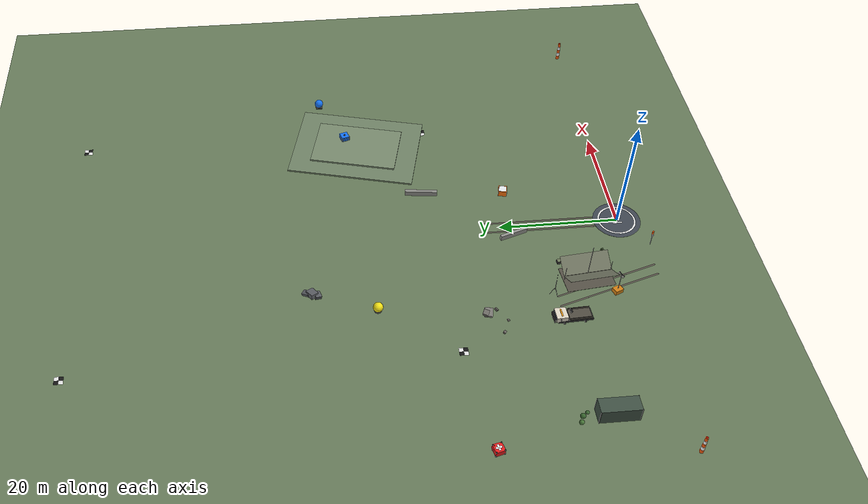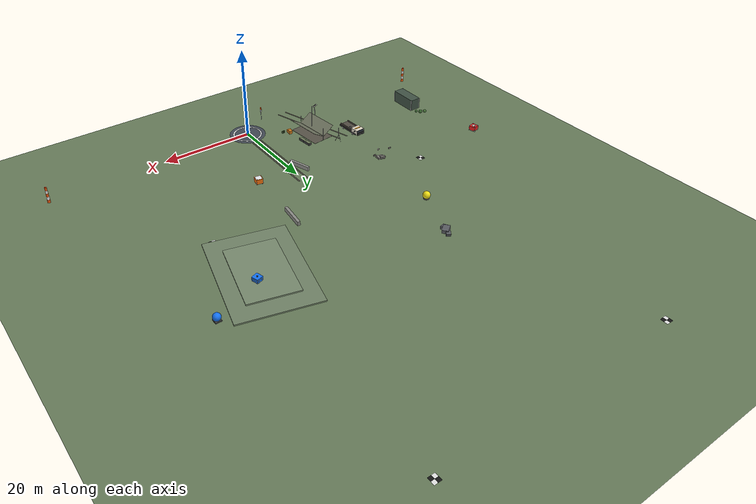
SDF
<sdf version="1.9">
 <world name="box_survey">
  <model name="global_terrain">
   <static>true</static>
   <link name="link">
    <collision name="collision">
     <geometry><plane><normal>0 0 1</normal><size>1000 1000</size></plane></geometry>
    </collision>
    <visual name="visual">
     <geometry><plane><normal>0 0 1</normal><size>1000 1000</size></plane></geometry>
     <material>
      <ambient>0.36 0.44 0.32 1</ambient>
      <diffuse>0.40 0.48 0.35 1</diffuse>
      <specular>0.04 0.04 0.04 1</specular>
     </material>
    </visual>
   </link>
   <pose>0 0 -0.01 0 0 0</pose>
  </model>
  <model name="gcp_markers">
   <static>true</static>
   <pose>0 0 0.004 0 0 0</pose>
   <link name="link">
    <visual name="gcp_1_base">
     <pose>-25.0 30.0 0 0 0 0</pose>
     <geometry><box><size>1.4 1.4 0.001</size></box></geometry>
     <material><ambient>0.9 0.9 0.9 1</ambient><diffuse>0.9 0.9 0.9 1</diffuse></material>
    </visual>
    <visual name="gcp_1_c1">
     <pose>-25.35 30.35 0.001 0 0 0</pose>
     <geometry><box><size>0.7 0.7 0.001</size></box></geometry>
     <material><ambient>0.08 0.08 0.08 1</ambient><diffuse>0.08 0.08 0.08 1</diffuse></material>
    </visual>
    <visual name="gcp_1_c2">
     <pose>-24.65 29.65 0.001 0 0 0</pose>
     <geometry><box><size>0.7 0.7 0.001</size></box></geometry>
     <material><ambient>0.08 0.08 0.08 1</ambient><diffuse>0.08 0.08 0.08 1</diffuse></material>
    </visual>
    <visual name="gcp_2_base">
     <pose>25.0 30.0 0 0 0 0</pose>
     <geometry><box><size>1.4 1.4 0.001</size></box></geometry>
     <material><ambient>0.9 0.9 0.9 1</ambient><diffuse>0.9 0.9 0.9 1</diffuse></material>
    </visual>
    <visual name="gcp_2_c1">
     <pose>24.65 30.35 0.001 0 0 0</pose>
     <geometry><box><size>0.7 0.7 0.001</size></box></geometry>
     <material><ambient>0.08 0.08 0.08 1</ambient><diffuse>0.08 0.08 0.08 1</diffuse></material>
    </visual>
    <visual name="gcp_2_c2">
     <pose>25.35 29.65 0.001 0 0 0</pose>
     <geometry><box><size>0.7 0.7 0.001</size></box></geometry>
     <material><ambient>0.08 0.08 0.08 1</ambient><diffuse>0.08 0.08 0.08 1</diffuse></material>
    </visual>
    <visual name="gcp_3_base">
     <pose>-25.0 90.0 0 0 0 0</pose>
     <geometry><box><size>1.4 1.4 0.001</size></box></geometry>
     <material><ambient>0.9 0.9 0.9 1</ambient><diffuse>0.9 0.9 0.9 1</diffuse></material>
    </visual>
    <visual name="gcp_3_c1">
     <pose>-25.35 90.35 0.001 0 0 0</pose>
     <geometry><box><size>0.7 0.7 0.001</size></box></geometry>
     <material><ambient>0.08 0.08 0.08 1</ambient><diffuse>0.08 0.08 0.08 1</diffuse></material>
    </visual>
    <visual name="gcp_3_c2">
     <pose>-24.65 89.65 0.001 0 0 0</pose>
     <geometry><box><size>0.7 0.7 0.001</size></box></geometry>
     <material><ambient>0.08 0.08 0.08 1</ambient><diffuse>0.08 0.08 0.08 1</diffuse></material>
    </visual>
    <visual name="gcp_4_base">
     <pose>25.0 90.0 0 0 0 0</pose>
     <geometry><box><size>1.4 1.4 0.001</size></box></geometry>
     <material><ambient>0.9 0.9 0.9 1</ambient><diffuse>0.9 0.9 0.9 1</diffuse></material>
    </visual>
    <visual name="gcp_4_c1">
     <pose>24.65 90.35 0.001 0 0 0</pose>
     <geometry><box><size>0.7 0.7 0.001</size></box></geometry>
     <material><ambient>0.08 0.08 0.08 1</ambient><diffuse>0.08 0.08 0.08 1</diffuse></material>
    </visual>
    <visual name="gcp_4_c2">
     <pose>25.35 89.65 0.001 0 0 0</pose>
     <geometry><box><size>0.7 0.7 0.001</size></box></geometry>
     <material><ambient>0.08 0.08 0.08 1</ambient><diffuse>0.08 0.08 0.08 1</diffuse></material>
    </visual>
   </link>
  </model>
  <model name="survey_tower_se">
   <static>true</static>
   <pose>45.0 0.0 0 0 0 0</pose>
   <link name="link">
    <collision name="col">
     <geometry><cylinder><radius>0.35</radius><length>3.5</length></cylinder></geometry>
     <pose>0 0 1.75 0 0 0</pose>
    </collision>
    <visual name="b1">
     <pose>0 0 0.35 0 0 0</pose>
     <geometry><cylinder><radius>0.30</radius><length>0.7</length></cylinder></geometry>
     <material><ambient>0.95 0.35 0.05 1</ambient><diffuse>0.95 0.35 0.05 1</diffuse></material>
    </visual>
    <visual name="b2">
     <pose>0 0 1.05 0 0 0</pose>
     <geometry><cylinder><radius>0.28</radius><length>0.7</length></cylinder></geometry>
     <material><ambient>0.95 0.95 0.95 1</ambient><diffuse>0.95 0.95 0.95 1</diffuse></material>
    </visual>
    <visual name="b3">
     <pose>0 0 1.75 0 0 0</pose>
     <geometry><cylinder><radius>0.26</radius><length>0.7</length></cylinder></geometry>
     <material><ambient>0.95 0.35 0.05 1</ambient><diffuse>0.95 0.35 0.05 1</diffuse></material>
    </visual>
    <visual name="b4">
     <pose>0 0 2.45 0 0 0</pose>
     <geometry><cylinder><radius>0.24</radius><length>0.7</length></cylinder></geometry>
     <material><ambient>0.95 0.95 0.95 1</ambient><diffuse>0.95 0.95 0.95 1</diffuse></material>
    </visual>
    <visual name="b5">
     <pose>0 0 3.15 0 0 0</pose>
     <geometry><cylinder><radius>0.22</radius><length>0.7</length></cylinder></geometry>
     <material><ambient>0.95 0.35 0.05 1</ambient><diffuse>0.95 0.35 0.05 1</diffuse></material>
    </visual>
    <visual name="beacon">
     <pose>0 0 3.55 0 0 0</pose>
     <geometry><sphere><radius>0.12</radius></sphere></geometry>
     <material>
      <ambient>0.9 0.05 0.05 1</ambient>
      <diffuse>0.9 0.05 0.05 1</diffuse>
      <emissive>0.7 0.05 0.05 1</emissive>
     </material>
    </visual>
   </link>
  </model>
  <model name="survey_tower_sw">
   <static>true</static>
   <pose>-45.0 0.0 0 0 0 0</pose>
   <link name="link">
    <collision name="col">
     <geometry><cylinder><radius>0.35</radius><length>3.5</length></cylinder></geometry>
     <pose>0 0 1.75 0 0 0</pose>
    </collision>
    <visual name="b1">
     <pose>0 0 0.35 0 0 0</pose>
     <geometry><cylinder><radius>0.30</radius><length>0.7</length></cylinder></geometry>
     <material><ambient>0.95 0.35 0.05 1</ambient><diffuse>0.95 0.35 0.05 1</diffuse></material>
    </visual>
    <visual name="b2">
     <pose>0 0 1.05 0 0 0</pose>
     <geometry><cylinder><radius>0.28</radius><length>0.7</length></cylinder></geometry>
     <material><ambient>0.95 0.95 0.95 1</ambient><diffuse>0.95 0.95 0.95 1</diffuse></material>
    </visual>
    <visual name="b3">
     <pose>0 0 1.75 0 0 0</pose>
     <geometry><cylinder><radius>0.26</radius><length>0.7</length></cylinder></geometry>
     <material><ambient>0.95 0.35 0.05 1</ambient><diffuse>0.95 0.35 0.05 1</diffuse></material>
    </visual>
    <visual name="b4">
     <pose>0 0 2.45 0 0 0</pose>
     <geometry><cylinder><radius>0.24</radius><length>0.7</length></cylinder></geometry>
     <material><ambient>0.95 0.95 0.95 1</ambient><diffuse>0.95 0.95 0.95 1</diffuse></material>
    </visual>
    <visual name="b5">
     <pose>0 0 3.15 0 0 0</pose>
     <geometry><cylinder><radius>0.22</radius><length>0.7</length></cylinder></geometry>
     <material><ambient>0.95 0.35 0.05 1</ambient><diffuse>0.95 0.35 0.05 1</diffuse></material>
    </visual>
    <visual name="beacon">
     <pose>0 0 3.55 0 0 0</pose>
     <geometry><sphere><radius>0.12</radius></sphere></geometry>
     <material>
      <ambient>0.9 0.05 0.05 1</ambient>
      <diffuse>0.9 0.05 0.05 1</diffuse>
      <emissive>0.7 0.05 0.05 1</emissive>
     </material>
    </visual>
   </link>
  </model>
  <model name="helipad_complex">
   <static>true</static>
   <pose>0.0 0.0 0.003 0 0 0</pose>
   <link name="link">
    <visual name="pad_surface">
     <geometry><cylinder><radius>4.0</radius><length>0.005</length></cylinder></geometry>
     <material><ambient>0.22 0.24 0.28 1</ambient><diffuse>0.25 0.28 0.32 1</diffuse></material>
    </visual>
    <visual name="white_ring">
     <pose>0 0 0.003 0 0 0</pose>
     <geometry><cylinder><radius>3.2</radius><length>0.002</length></cylinder></geometry>
     <material><ambient>0.92 0.92 0.92 1</ambient><diffuse>0.92 0.92 0.92 1</diffuse></material>
    </visual>
    <visual name="inner_pad">
     <pose>0 0 0.004 0 0 0</pose>
     <geometry><cylinder><radius>2.9</radius><length>0.002</length></cylinder></geometry>
     <material><ambient>0.22 0.24 0.28 1</ambient><diffuse>0.25 0.28 0.32 1</diffuse></material>
    </visual>
    <visual name="h_bar_left">
     <pose>-0.6 0 0.005 0 0 0</pose>
     <geometry><box><size>0.28 1.6 0.002</size></box></geometry>
     <material><ambient>0.95 0.95 0.95 1</ambient><diffuse>0.95 0.95 0.95 1</diffuse></material>
    </visual>
    <visual name="h_bar_right">
     <pose>0.6 0 0.005 0 0 0</pose>
     <geometry><box><size>0.28 1.6 0.002</size></box></geometry>
     <material><ambient>0.95 0.95 0.95 1</ambient><diffuse>0.95 0.95 0.95 1</diffuse></material>
    </visual>
    <visual name="h_bar_cross">
     <pose>0 0 0.005 0 0 0</pose>
     <geometry><box><size>1.2 0.28 0.002</size></box></geometry>
     <material><ambient>0.95 0.95 0.95 1</ambient><diffuse>0.95 0.95 0.95 1</diffuse></material>
    </visual>
   </link>
  </model>
  <model name="weather_mast">
   <static>true</static>
   <pose>-6.0 -4.0 0 0 0 0</pose>
   <link name="link">
    <collision name="col">
     <geometry><cylinder><radius>0.08</radius><length>2.8</length></cylinder></geometry>
     <pose>0 0 1.4 0 0 0</pose>
    </collision>
    <visual name="pole">
     <pose>0 0 1.4 0 0 0</pose>
     <geometry><cylinder><radius>0.05</radius><length>2.8</length></cylinder></geometry>
     <material><ambient>0.75 0.78 0.82 1</ambient><diffuse>0.75 0.78 0.82 1</diffuse></material>
    </visual>
    <visual name="sensor_box">
     <pose>0 0 2.2 0 0 0</pose>
     <geometry><box><size>0.3 0.25 0.4</size></box></geometry>
     <material><ambient>0.85 0.85 0.85 1</ambient><diffuse>0.85 0.85 0.85 1</diffuse></material>
    </visual>
    <visual name="wind_sock">
     <pose>0 0 2.8 0 0 0</pose>
     <geometry><cylinder><radius>0.15</radius><length>0.6</length></cylinder></geometry>
     <material><ambient>0.95 0.35 0.05 1</ambient><diffuse>0.95 0.35 0.05 1</diffuse></material>
    </visual>
   </link>
  </model>
  <model name="natural_ridge_ce">
   <static>true</static>
   <pose>22.0 42.0 0 0 0 -0.25</pose>
   <link name="link">
    <collision name="col_r1">
     <pose>0 0 0.15 0 0 0</pose>
     <geometry><box><size>16.0 22.0 0.30</size></box></geometry>
    </collision>
    <visual name="vis_r1">
     <pose>0 0 0.15 0 0 0</pose>
     <geometry><box><size>16.0 22.0 0.30</size></box></geometry>
     <material><ambient>0.40 0.47 0.36 1</ambient><diffuse>0.44 0.51 0.40 1</diffuse></material>
    </visual>
    <collision name="col_r2">
     <pose>0 0 0.45 0 0 0</pose>
     <geometry><box><size>10.0 15.0 0.30</size></box></geometry>
    </collision>
    <visual name="vis_r2">
     <pose>0 0 0.45 0 0 0</pose>
     <geometry><box><size>10.0 15.0 0.30</size></box></geometry>
     <material><ambient>0.43 0.50 0.39 1</ambient><diffuse>0.47 0.54 0.43 1</diffuse></material>
    </visual>
   </link>
  </model>
  <model name="rock_outcrop_alpha">
   <static>true</static>
   <pose>-12.0 52.0 0 0 0 0.6</pose>
   <link name="link">
    <collision name="c1">
     <pose>0 0 0.4 0 0 0</pose>
     <geometry><box><size>1.6 1.3 0.8</size></box></geometry>
    </collision>
    <visual name="v1">
     <pose>0 0 0.4 0.1 0.15 0</pose>
     <geometry><box><size>1.6 1.3 0.8</size></box></geometry>
     <material><ambient>0.32 0.33 0.35 1</ambient><diffuse>0.36 0.37 0.39 1</diffuse></material>
    </visual>
    <visual name="v2">
     <pose>0.8 0.6 0.25 -0.1 0.2 0.4</pose>
     <geometry><box><size>1.1 0.9 0.5</size></box></geometry>
     <material><ambient>0.28 0.29 0.31 1</ambient><diffuse>0.32 0.33 0.35 1</diffuse></material>
    </visual>
    <visual name="v3">
     <pose>-0.7 -0.5 0.3 0.2 -0.1 -0.3</pose>
     <geometry><box><size>1.2 1.0 0.6</size></box></geometry>
     <material><ambient>0.30 0.31 0.33 1</ambient><diffuse>0.34 0.35 0.37 1</diffuse></material>
    </visual>
   </link>
  </model>
  <model name="jersey_barrier_2">
   <static>true</static>
   <pose>9.0 32.0 0 0 0 -0.12</pose>
   <link name="link">
    <collision name="col">
     <pose>0 0 0.45 0 0 0</pose>
     <geometry><box><size>0.6 5.5 0.9</size></box></geometry>
    </collision>
    <visual name="vis">
     <pose>0 0 0.45 0 0 0</pose>
     <geometry><box><size>0.6 5.5 0.9</size></box></geometry>
     <material><ambient>0.50 0.50 0.48 1</ambient><diffuse>0.54 0.54 0.52 1</diffuse></material>
    </visual>
   </link>
  </model>
  <model name="iso_container_west">
   <static>true</static>
   <pose>-38.0 10.0 0 0 0 0</pose>
   <link name="link">
    <collision name="col">
     <pose>0 0 1.3 0 0 0</pose>
     <geometry><box><size>2.44 6.06 2.60</size></box></geometry>
    </collision>
    <visual name="body">
     <pose>0 0 1.3 0 0 0</pose>
     <geometry><box><size>2.44 6.06 2.60</size></box></geometry>
     <material>
      <ambient>0.22 0.28 0.24 1</ambient>
      <diffuse>0.25 0.32 0.27 1</diffuse>
      <specular>0.1 0.1 0.1 1</specular>
     </material>
    </visual>
    <visual name="corner_post_1">
     <pose>-1.20 -3.00 1.3 0 0 0</pose>
     <geometry><box><size>0.12 0.12 2.60</size></box></geometry>
     <material><ambient>0.12 0.12 0.12 1</ambient><diffuse>0.12 0.12 0.12 1</diffuse></material>
    </visual>
    <visual name="corner_post_2">
     <pose>1.20 -3.00 1.3 0 0 0</pose>
     <geometry><box><size>0.12 0.12 2.60</size></box></geometry>
     <material><ambient>0.12 0.12 0.12 1</ambient><diffuse>0.12 0.12 0.12 1</diffuse></material>
    </visual>
    <visual name="corner_post_3">
     <pose>-1.20 3.00 1.3 0 0 0</pose>
     <geometry><box><size>0.12 0.12 2.60</size></box></geometry>
     <material><ambient>0.12 0.12 0.12 1</ambient><diffuse>0.12 0.12 0.12 1</diffuse></material>
    </visual>
    <visual name="corner_post_4">
     <pose>1.20 3.00 1.3 0 0 0</pose>
     <geometry><box><size>0.12 0.12 2.60</size></box></geometry>
     <material><ambient>0.12 0.12 0.12 1</ambient><diffuse>0.12 0.12 0.12 1</diffuse></material>
    </visual>
   </link>
  </model>
  <model name="rubble_debris_cluster_2">
   <static>true</static>
   <pose>-18.0 25.0 0 0 0 -0.2</pose>
   <link name="link">
    <collision name="col">
     <pose>0 0 0.3 0 0 0</pose>
     <geometry><box><size>2.0 1.6 0.6</size></box></geometry>
    </collision>
    <visual name="slab1">
     <pose>0 0 0.18 0.05 -0.1 0</pose>
     <geometry><box><size>1.6 1.3 0.35</size></box></geometry>
     <material><ambient>0.44 0.43 0.41 1</ambient><diffuse>0.48 0.47 0.45 1</diffuse></material>
    </visual>
    <visual name="slab2">
     <pose>-0.3 0.4 0.4 0.15 0.05 -0.2</pose>
     <geometry><box><size>1.1 0.9 0.3</size></box></geometry>
     <material><ambient>0.38 0.37 0.35 1</ambient><diffuse>0.42 0.41 0.39 1</diffuse></material>
    </visual>
   </link>
  </model>
  <model name="target_cube_red">
   <static>true</static>
   <pose>-42.5 28.0 0 0 0 0.25</pose>
   <link name="link">
    <collision name="col">
     <pose>0 0 0.6 0 0 0</pose>
     <geometry><box><size>1.5 1.5 1.2</size></box></geometry>
    </collision>
    <visual name="skid_left">
     <pose>-0.55 0 0.06 0 0 0</pose>
     <geometry><box><size>0.16 1.50 0.12</size></box></geometry>
     <material><ambient>0.12 0.12 0.12 1</ambient><diffuse>0.14 0.14 0.14 1</diffuse></material>
    </visual>
    <visual name="skid_right">
     <pose>0.55 0 0.06 0 0 0</pose>
     <geometry><box><size>0.16 1.50 0.12</size></box></geometry>
     <material><ambient>0.12 0.12 0.12 1</ambient><diffuse>0.14 0.14 0.14 1</diffuse></material>
    </visual>
    <visual name="body">
     <pose>0 0 0.60 0 0 0</pose>
     <geometry><box><size>1.46 1.46 0.96</size></box></geometry>
     <material>
      <ambient>0.88 0.10 0.10 1</ambient>
      <diffuse>0.92 0.12 0.12 1</diffuse>
      <specular>0.3 0.3 0.3 1</specular>
     </material>
    </visual>
    <visual name="cap_blf">
     <pose>-0.65 -0.65 0.20 0 0 0</pose>
     <geometry><box><size>0.20 0.20 0.22</size></box></geometry>
     <material><ambient>0.10 0.10 0.10 1</ambient><diffuse>0.12 0.12 0.12 1</diffuse></material>
    </visual>
    <visual name="cap_brf">
     <pose>0.65 -0.65 0.20 0 0 0</pose>
     <geometry><box><size>0.20 0.20 0.22</size></box></geometry>
     <material><ambient>0.10 0.10 0.10 1</ambient><diffuse>0.12 0.12 0.12 1</diffuse></material>
    </visual>
    <visual name="cap_blr">
     <pose>-0.65 0.65 0.20 0 0 0</pose>
     <geometry><box><size>0.20 0.20 0.22</size></box></geometry>
     <material><ambient>0.10 0.10 0.10 1</ambient><diffuse>0.12 0.12 0.12 1</diffuse></material>
    </visual>
    <visual name="cap_brr">
     <pose>0.65 0.65 0.20 0 0 0</pose>
     <geometry><box><size>0.20 0.20 0.22</size></box></geometry>
     <material><ambient>0.10 0.10 0.10 1</ambient><diffuse>0.12 0.12 0.12 1</diffuse></material>
    </visual>
    <visual name="cap_tlf">
     <pose>-0.65 -0.65 1.00 0 0 0</pose>
     <geometry><box><size>0.20 0.20 0.20</size></box></geometry>
     <material><ambient>0.10 0.10 0.10 1</ambient><diffuse>0.12 0.12 0.12 1</diffuse></material>
    </visual>
    <visual name="cap_trf">
     <pose>0.65 -0.65 1.00 0 0 0</pose>
     <geometry><box><size>0.20 0.20 0.20</size></box></geometry>
     <material><ambient>0.10 0.10 0.10 1</ambient><diffuse>0.12 0.12 0.12 1</diffuse></material>
    </visual>
    <visual name="cap_tlr">
     <pose>-0.65 0.65 1.00 0 0 0</pose>
     <geometry><box><size>0.20 0.20 0.20</size></box></geometry>
     <material><ambient>0.10 0.10 0.10 1</ambient><diffuse>0.12 0.12 0.12 1</diffuse></material>
    </visual>
    <visual name="cap_trr">
     <pose>0.65 0.65 1.00 0 0 0</pose>
     <geometry><box><size>0.20 0.20 0.20</size></box></geometry>
     <material><ambient>0.10 0.10 0.10 1</ambient><diffuse>0.12 0.12 0.12 1</diffuse></material>
    </visual>
    <visual name="cross_v">
     <pose>0 0 1.085 0 0 0</pose>
     <geometry><box><size>0.34 0.98 0.02</size></box></geometry>
     <material><ambient>0.95 0.95 0.95 1</ambient><diffuse>0.98 0.98 0.98 1</diffuse></material>
    </visual>
    <visual name="cross_h">
     <pose>0 0 1.085 0 0 0</pose>
     <geometry><box><size>0.98 0.34 0.02</size></box></geometry>
     <material><ambient>0.95 0.95 0.95 1</ambient><diffuse>0.98 0.98 0.98 1</diffuse></material>
    </visual>
    <visual name="handle_f">
     <pose>0 -0.74 0.65 0 0 0</pose>
     <geometry><box><size>0.28 0.04 0.08</size></box></geometry>
     <material><ambient>0.12 0.12 0.12 1</ambient><diffuse>0.14 0.14 0.14 1</diffuse></material>
    </visual>
    <visual name="handle_r">
     <pose>0 0.74 0.65 0 0 0</pose>
     <geometry><box><size>0.28 0.04 0.08</size></box></geometry>
     <material><ambient>0.12 0.12 0.12 1</ambient><diffuse>0.14 0.14 0.14 1</diffuse></material>
    </visual>
    <visual name="id_plate">
     <pose>0 -0.735 0.45 0 0 0</pose>
     <geometry><box><size>0.65 0.01 0.16</size></box></geometry>
     <material><ambient>0.92 0.92 0.92 1</ambient><diffuse>0.95 0.95 0.95 1</diffuse></material>
    </visual>
    <visual name="valve">
     <pose>0.48 0.48 1.09 0 0 0</pose>
     <geometry><cylinder><radius>0.06</radius><length>0.04</length></cylinder></geometry>
     <material><ambient>0.15 0.15 0.15 1</ambient><diffuse>0.20 0.20 0.20 1</diffuse></material>
    </visual>
   </link>
  </model>
  <model name="target_cube_orange">
   <static>true</static>
   <pose>8.0 18.0 0 0 0 -0.2</pose>
   <link name="link">
    <collision name="col">
     <pose>0 0 0.6 0 0 0</pose>
     <geometry><box><size>1.5 1.5 1.2</size></box></geometry>
    </collision>
    <visual name="skid_l">
     <pose>-0.55 0 0.05 0 0 0</pose>
     <geometry><box><size>0.16 1.46 0.10</size></box></geometry>
     <material><ambient>0.15 0.15 0.15 1</ambient><diffuse>0.15 0.15 0.15 1</diffuse></material>
    </visual>
    <visual name="skid_r">
     <pose>0.55 0 0.05 0 0 0</pose>
     <geometry><box><size>0.16 1.46 0.10</size></box></geometry>
     <material><ambient>0.15 0.15 0.15 1</ambient><diffuse>0.15 0.15 0.15 1</diffuse></material>
    </visual>
    <visual name="body">
     <pose>0 0 0.62 0 0 0</pose>
     <geometry><box><size>1.46 1.46 1.04</size></box></geometry>
     <material>
      <ambient>0.95 0.42 0.04 1</ambient>
      <diffuse>0.98 0.45 0.05 1</diffuse>
      <specular>0.3 0.3 0.3 1</specular>
     </material>
    </visual>
    <visual name="thermal_roof">
     <pose>0 0 1.15 0 0 0</pose>
     <geometry><box><size>1.30 1.30 0.04</size></box></geometry>
     <material>
      <ambient>0.85 0.88 0.90 1</ambient>
      <diffuse>0.90 0.92 0.94 1</diffuse>
      <specular>0.5 0.5 0.5 1</specular>
     </material>
    </visual>
    <visual name="rib_fl">
     <pose>-0.70 -0.70 0.62 0 0 0</pose>
     <geometry><cylinder><radius>0.04</radius><length>1.04</length></cylinder></geometry>
     <material><ambient>0.10 0.10 0.10 1</ambient><diffuse>0.12 0.12 0.12 1</diffuse></material>
    </visual>
    <visual name="rib_fr">
     <pose>0.70 -0.70 0.62 0 0 0</pose>
     <geometry><cylinder><radius>0.04</radius><length>1.04</length></cylinder></geometry>
     <material><ambient>0.10 0.10 0.10 1</ambient><diffuse>0.12 0.12 0.12 1</diffuse></material>
    </visual>
    <visual name="rib_rl">
     <pose>-0.70 0.70 0.62 0 0 0</pose>
     <geometry><cylinder><radius>0.04</radius><length>1.04</length></cylinder></geometry>
     <material><ambient>0.10 0.10 0.10 1</ambient><diffuse>0.12 0.12 0.12 1</diffuse></material>
    </visual>
    <visual name="rib_rr">
     <pose>0.70 0.70 0.62 0 0 0</pose>
     <geometry><cylinder><radius>0.04</radius><length>1.04</length></cylinder></geometry>
     <material><ambient>0.10 0.10 0.10 1</ambient><diffuse>0.12 0.12 0.12 1</diffuse></material>
    </visual>
    <visual name="entry_flap">
     <pose>0 -0.735 0.58 0 0 0</pose>
     <geometry><box><size>0.68 0.01 0.78</size></box></geometry>
     <material><ambient>0.10 0.10 0.10 1</ambient><diffuse>0.14 0.14 0.14 1</diffuse></material>
    </visual>
    <visual name="viewport">
     <pose>0 -0.742 0.72 0 0 0</pose>
     <geometry><box><size>0.32 0.01 0.22</size></box></geometry>
     <material><ambient>0.15 0.20 0.25 1</ambient><diffuse>0.20 0.28 0.35 1</diffuse></material>
    </visual>
    <visual name="beacon_base">
     <pose>0.50 0.50 1.18 0 0 0</pose>
     <geometry><cylinder><radius>0.06</radius><length>0.04</length></cylinder></geometry>
     <material><ambient>0.1 0.1 0.1 1</ambient><diffuse>0.1 0.1 0.1 1</diffuse></material>
    </visual>
    <visual name="beacon_strobe">
     <pose>0.50 0.50 1.23 0 0 0</pose>
     <geometry><cylinder><radius>0.05</radius><length>0.06</length></cylinder></geometry>
     <material>
      <ambient>0.95 0.3 0.0 1</ambient>
      <diffuse>0.98 0.4 0.0 1</diffuse>
      <emissive>0.8 0.2 0.0 1</emissive>
     </material>
    </visual>
   </link>
  </model>
  <model name="target_cube_blue">
   <static>true</static>
   <pose>24.0 44.0 0.30 0 0 0.30</pose>
   <link name="link">
    <collision name="col">
     <pose>0 0 0.6 0 0 0</pose>
     <geometry><box><size>1.5 1.5 1.2</size></box></geometry>
    </collision>
    <visual name="pallet">
     <pose>0 0 0.06 0 0 0</pose>
     <geometry><box><size>1.48 1.48 0.12</size></box></geometry>
     <material>
      <ambient>0.40 0.42 0.44 1</ambient>
      <diffuse>0.48 0.50 0.52 1</diffuse>
      <specular>0.4 0.4 0.4 1</specular>
     </material>
    </visual>
    <visual name="body">
     <pose>0 0 0.64 0 0 0</pose>
     <geometry><box><size>1.40 1.40 1.04</size></box></geometry>
     <material>
      <ambient>0.06 0.42 0.90 1</ambient>
      <diffuse>0.08 0.45 0.95 1</diffuse>
      <specular>0.4 0.4 0.4 1</specular>
     </material>
    </visual>
    <visual name="cage_c1">
     <pose>-0.68 -0.68 0.64 0 0 0</pose>
     <geometry><cylinder><radius>0.03</radius><length>1.04</length></cylinder></geometry>
     <material>
      <ambient>0.55 0.57 0.60 1</ambient>
      <diffuse>0.65 0.68 0.72 1</diffuse>
      <specular>0.5 0.5 0.5 1</specular>
     </material>
    </visual>
    <visual name="cage_c2">
     <pose>0.68 -0.68 0.64 0 0 0</pose>
     <geometry><cylinder><radius>0.03</radius><length>1.04</length></cylinder></geometry>
     <material>
      <ambient>0.55 0.57 0.60 1</ambient>
      <diffuse>0.65 0.68 0.72 1</diffuse>
      <specular>0.5 0.5 0.5 1</specular>
     </material>
    </visual>
    <visual name="cage_c3">
     <pose>-0.68 0.68 0.64 0 0 0</pose>
     <geometry><cylinder><radius>0.03</radius><length>1.04</length></cylinder></geometry>
     <material>
      <ambient>0.55 0.57 0.60 1</ambient>
      <diffuse>0.65 0.68 0.72 1</diffuse>
      <specular>0.5 0.5 0.5 1</specular>
     </material>
    </visual>
    <visual name="cage_c4">
     <pose>0.68 0.68 0.64 0 0 0</pose>
     <geometry><cylinder><radius>0.03</radius><length>1.04</length></cylinder></geometry>
     <material>
      <ambient>0.55 0.57 0.60 1</ambient>
      <diffuse>0.65 0.68 0.72 1</diffuse>
      <specular>0.5 0.5 0.5 1</specular>
     </material>
    </visual>
    <visual name="ring_low">
     <pose>0 0 0.35 0 0 0</pose>
     <geometry><box><size>1.44 1.44 0.03</size></box></geometry>
     <material><ambient>0.55 0.57 0.60 1</ambient><diffuse>0.65 0.68 0.72 1</diffuse></material>
    </visual>
    <visual name="ring_mid">
     <pose>0 0 0.65 0 0 0</pose>
     <geometry><box><size>1.44 1.44 0.03</size></box></geometry>
     <material><ambient>0.55 0.57 0.60 1</ambient><diffuse>0.65 0.68 0.72 1</diffuse></material>
    </visual>
    <visual name="ring_top">
     <pose>0 0 0.95 0 0 0</pose>
     <geometry><box><size>1.44 1.44 0.03</size></box></geometry>
     <material><ambient>0.55 0.57 0.60 1</ambient><diffuse>0.65 0.68 0.72 1</diffuse></material>
    </visual>
    <visual name="fill_cap">
     <pose>0 0 1.18 0 0 0</pose>
     <geometry><cylinder><radius>0.16</radius><length>0.06</length></cylinder></geometry>
     <material><ambient>0.12 0.12 0.12 1</ambient><diffuse>0.15 0.15 0.15 1</diffuse></material>
    </visual>
    <visual name="spigot">
     <pose>0 -0.74 0.22 1.5708 0 0</pose>
     <geometry><cylinder><radius>0.05</radius><length>0.12</length></cylinder></geometry>
     <material><ambient>0.15 0.15 0.15 1</ambient><diffuse>0.18 0.18 0.18 1</diffuse></material>
    </visual>
    <visual name="lever">
     <pose>0.06 -0.76 0.27 0 0 0</pose>
     <geometry><box><size>0.03 0.10 0.02</size></box></geometry>
     <material><ambient>0.85 0.1 0.1 1</ambient><diffuse>0.90 0.12 0.12 1</diffuse></material>
    </visual>
   </link>
  </model>
  <model name="chemical_storage_dome">
   <static>true</static>
   <pose>-16.0 42.0 0 0 0 0</pose>
   <link name="link">
    <collision name="col">
     <pose>0 0 0.8 0 0 0</pose>
     <geometry><sphere><radius>0.85</radius></sphere></geometry>
    </collision>
    <visual name="pedestal">
     <pose>0 0 0.15 0 0 0</pose>
     <geometry><cylinder><radius>0.6</radius><length>0.3</length></cylinder></geometry>
     <material><ambient>0.35 0.35 0.35 1</ambient><diffuse>0.35 0.35 0.35 1</diffuse></material>
    </visual>
    <visual name="sphere_tank">
     <pose>0 0 0.85 0 0 0</pose>
     <geometry><sphere><radius>0.8</radius></sphere></geometry>
     <material><ambient>0.92 0.85 0.08 1</ambient><diffuse>0.95 0.88 0.08 1</diffuse></material>
    </visual>
   </link>
  </model>
  <model name="pressurized_water_vessel">
   <static>true</static>
   <pose>34.0 48.0 0 0 0 0</pose>
   <link name="link">
    <collision name="col">
     <pose>0 0 0.8 0 0 0</pose>
     <geometry><sphere><radius>0.8</radius></sphere></geometry>
    </collision>
    <visual name="skid">
     <pose>0 0 0.12 0 0 0</pose>
     <geometry><box><size>1.2 1.2 0.24</size></box></geometry>
     <material><ambient>0.25 0.25 0.25 1</ambient><diffuse>0.25 0.25 0.25 1</diffuse></material>
    </visual>
    <visual name="vessel">
     <pose>0 0 0.85 0 0 0</pose>
     <geometry><sphere><radius>0.75</radius></sphere></geometry>
     <material><ambient>0.08 0.42 0.90 1</ambient><diffuse>0.08 0.45 0.95 1</diffuse></material>
    </visual>
   </link>
  </model>
  <model name="concrete_retaining_wall">
   <static>true</static>
   <pose>-2.0 18.0 0 0 0 0.32</pose>
   <link name="link">
    <collision name="col">
     <pose>0 0 0.45 0 0 0</pose>
     <geometry><box><size>0.5 4.8 0.9</size></box></geometry>
    </collision>
    <visual name="barrier">
     <pose>0 0 0.45 0 0 0</pose>
     <geometry><box><size>0.5 4.8 0.9</size></box></geometry>
     <material><ambient>0.54 0.54 0.52 1</ambient><diffuse>0.58 0.58 0.56 1</diffuse></material>
    </visual>
   </link>
  </model>
  <model name="rubble_scatter_2">
   <static>true</static>
   <pose>-20.0 24.0 0 0 0 0</pose>
   <link name="link">
    <visual name="frag_a">
     <pose>1.5 1.2 0.10 0.2 -0.15 0.4</pose>
     <geometry><box><size>0.5 0.35 0.20</size></box></geometry>
     <material><ambient>0.43 0.41 0.39 1</ambient><diffuse>0.47 0.45 0.43 1</diffuse></material>
    </visual>
    <visual name="frag_b">
     <pose>-2.0 -0.8 0.12 0.35 0.2 -0.5</pose>
     <geometry><box><size>0.55 0.40 0.25</size></box></geometry>
     <material><ambient>0.39 0.37 0.35 1</ambient><diffuse>0.43 0.41 0.39 1</diffuse></material>
    </visual>
    <visual name="frag_c">
     <pose>0.3 -1.8 0.08 -0.1 0.3 0.2</pose>
     <geometry><box><size>0.45 0.30 0.16</size></box></geometry>
     <material><ambient>0.45 0.43 0.41 1</ambient><diffuse>0.49 0.47 0.45 1</diffuse></material>
    </visual>
    <visual name="frag_d">
     <pose>2.5 -0.3 0.14 0.5 -0.2 0.6</pose>
     <geometry><box><size>0.6 0.4 0.28</size></box></geometry>
     <material><ambient>0.41 0.39 0.37 1</ambient><diffuse>0.45 0.43 0.41 1</diffuse></material>
    </visual>
   </link>
  </model>
  <model name="fob_staging_tent">
   <static>true</static>
   <pose>-12.0 8.0 0 0 0 0.1</pose>
   <link name="link">
    <visual name="floor">
     <pose>0 0 0.02 0 0 0</pose>
     <geometry><box><size>5.0 8.0 0.04</size></box></geometry>
     <material><ambient>0.30 0.28 0.25 1</ambient><diffuse>0.34 0.32 0.28 1</diffuse></material>
    </visual>
    <visual name="ridge_pole">
     <pose>0 0 2.8 0 0 0</pose>
     <geometry><cylinder><radius>0.04</radius><length>8.0</length></cylinder></geometry>
     <material><ambient>0.55 0.55 0.55 1</ambient><diffuse>0.60 0.60 0.60 1</diffuse></material>
    </visual>
    <visual name="upright_n">
     <pose>0 3.8 1.4 0 0 0</pose>
     <geometry><cylinder><radius>0.04</radius><length>2.8</length></cylinder></geometry>
     <material><ambient>0.55 0.55 0.55 1</ambient><diffuse>0.60 0.60 0.60 1</diffuse></material>
    </visual>
    <visual name="upright_s">
     <pose>0 -3.8 1.4 0 0 0</pose>
     <geometry><cylinder><radius>0.04</radius><length>2.8</length></cylinder></geometry>
     <material><ambient>0.55 0.55 0.55 1</ambient><diffuse>0.60 0.60 0.60 1</diffuse></material>
    </visual>
    <visual name="roof_l">
     <pose>-1.4 0 1.8 0 0.55 0</pose>
     <geometry><box><size>3.2 8.0 0.02</size></box></geometry>
     <material><ambient>0.42 0.44 0.36 1</ambient><diffuse>0.46 0.48 0.40 1</diffuse></material>
    </visual>
    <visual name="roof_r">
     <pose>1.4 0 1.8 0 -0.55 0</pose>
     <geometry><box><size>3.2 8.0 0.02</size></box></geometry>
     <material><ambient>0.40 0.42 0.34 1</ambient><diffuse>0.44 0.46 0.38 1</diffuse></material>
    </visual>
    <collision name="col">
     <pose>0 0 1.4 0 0 0</pose>
     <geometry><box><size>5.0 8.0 2.8</size></box></geometry>
    </collision>
   </link>
  </model>
  <model name="fob_floodlight_tower">
   <static>true</static>
   <pose>-15.5 4.0 0 0 0 0.4</pose>
   <link name="link">
    <visual name="base">
     <pose>0 0 0.4 0 0 0</pose>
     <geometry><box><size>1.1 1.4 0.8</size></box></geometry>
     <material><ambient>0.75 0.45 0.05 1</ambient><diffuse>0.82 0.50 0.08 1</diffuse></material>
    </visual>
    <visual name="mast">
     <pose>0 0 2.4 0 0 0</pose>
     <geometry><cylinder><radius>0.06</radius><length>3.4</length></cylinder></geometry>
     <material><ambient>0.6 0.6 0.6 1</ambient><diffuse>0.7 0.7 0.7 1</diffuse></material>
    </visual>
    <visual name="light_bar">
     <pose>0 0 4.15 0 0 0</pose>
     <geometry><box><size>1.2 0.12 0.12</size></box></geometry>
     <material><ambient>0.2 0.2 0.2 1</ambient><diffuse>0.25 0.25 0.25 1</diffuse></material>
    </visual>
    <visual name="head_l">
     <pose>-0.45 0.15 4.05 0.4 0 0</pose>
     <geometry><box><size>0.35 0.25 0.20</size></box></geometry>
     <material>
      <ambient>0.95 0.95 0.90 1</ambient>
      <diffuse>1.0 1.0 0.95 1</diffuse>
      <emissive>0.7 0.7 0.65 1</emissive>
     </material>
    </visual>
    <visual name="head_r">
     <pose>0.45 0.15 4.05 0.4 0 0</pose>
     <geometry><box><size>0.35 0.25 0.20</size></box></geometry>
     <material>
      <ambient>0.95 0.95 0.90 1</ambient>
      <diffuse>1.0 1.0 0.95 1</diffuse>
      <emissive>0.7 0.7 0.65 1</emissive>
     </material>
    </visual>
   </link>
  </model>
  <model name="fob_triage_stretchers">
   <static>true</static>
   <pose>-8.5 10.5 0 0 0 0.1</pose>
   <link name="link">
    <visual name="s1_canvas">
     <pose>0 -0.7 0.55 0 0 0</pose>
     <geometry><box><size>0.65 1.95 0.04</size></box></geometry>
     <material><ambient>0.38 0.42 0.32 1</ambient><diffuse>0.44 0.48 0.36 1</diffuse></material>
    </visual>
    <visual name="s1_frame">
     <pose>0 -0.7 0.28 0 0 0</pose>
     <geometry><box><size>0.68 1.98 0.52</size></box></geometry>
     <material><ambient>0.2 0.2 0.2 1</ambient><diffuse>0.25 0.25 0.25 1</diffuse></material>
    </visual>
    <visual name="s2_canvas">
     <pose>0 0.7 0.55 0 0 0</pose>
     <geometry><box><size>0.65 1.95 0.04</size></box></geometry>
     <material><ambient>0.38 0.42 0.32 1</ambient><diffuse>0.44 0.48 0.36 1</diffuse></material>
    </visual>
    <visual name="s2_frame">
     <pose>0 0.7 0.28 0 0 0</pose>
     <geometry><box><size>0.68 1.98 0.52</size></box></geometry>
     <material><ambient>0.2 0.2 0.2 1</ambient><diffuse>0.25 0.25 0.25 1</diffuse></material>
    </visual>
   </link>
  </model>
  <model name="fob_comms_tripod">
   <static>true</static>
   <pose>-15.0 14.0 0 0 0 0</pose>
   <link name="link">
    <visual name="hub">
     <pose>0 0 1.2 0 0 0</pose>
     <geometry><cylinder><radius>0.08</radius><length>0.15</length></cylinder></geometry>
     <material><ambient>0.15 0.15 0.15 1</ambient><diffuse>0.2 0.2 0.2 1</diffuse></material>
    </visual>
    <visual name="leg_1">
     <pose>0 0.45 0.6 0.45 0 0</pose>
     <geometry><cylinder><radius>0.03</radius><length>1.35</length></cylinder></geometry>
     <material><ambient>0.5 0.5 0.5 1</ambient><diffuse>0.6 0.6 0.6 1</diffuse></material>
    </visual>
    <visual name="leg_2">
     <pose>-0.39 -0.22 0.6 -0.22 0.39 0</pose>
     <geometry><cylinder><radius>0.03</radius><length>1.35</length></cylinder></geometry>
     <material><ambient>0.5 0.5 0.5 1</ambient><diffuse>0.6 0.6 0.6 1</diffuse></material>
    </visual>
    <visual name="leg_3">
     <pose>0.39 -0.22 0.6 -0.22 -0.39 0</pose>
     <geometry><cylinder><radius>0.03</radius><length>1.35</length></cylinder></geometry>
     <material><ambient>0.5 0.5 0.5 1</ambient><diffuse>0.6 0.6 0.6 1</diffuse></material>
    </visual>
    <visual name="mast">
     <pose>0 0 2.2 0 0 0</pose>
     <geometry><cylinder><radius>0.04</radius><length>2.0</length></cylinder></geometry>
     <material><ambient>0.5 0.5 0.5 1</ambient><diffuse>0.6 0.6 0.6 1</diffuse></material>
    </visual>
    <visual name="whip">
     <pose>0 0 3.8 0 0 0</pose>
     <geometry><cylinder><radius>0.015</radius><length>1.4</length></cylinder></geometry>
     <material><ambient>0.2 0.2 0.2 1</ambient><diffuse>0.25 0.25 0.25 1</diffuse></material>
    </visual>
   </link>
  </model>
  <model name="fob_fuel_cans">
   <static>true</static>
   <pose>-6.8 4.2 0 0 0 0.3</pose>
   <link name="link">
    <visual name="can_1">
     <pose>-0.2 0 0.25 0 0 0</pose>
     <geometry><box><size>0.20 0.38 0.48</size></box></geometry>
     <material><ambient>0.22 0.32 0.18 1</ambient><diffuse>0.28 0.38 0.22 1</diffuse></material>
    </visual>
    <visual name="can_2">
     <pose>0.2 0 0.25 0 0 0</pose>
     <geometry><box><size>0.20 0.38 0.48</size></box></geometry>
     <material><ambient>0.22 0.32 0.18 1</ambient><diffuse>0.28 0.38 0.22 1</diffuse></material>
    </visual>
   </link>
  </model>
  <model name="utility_truck">
   <static>true</static>
   <pose>-20.0 12.0 0 0 0 0.05</pose>
   <link name="link">
    <visual name="chassis">
     <pose>0 0 0.45 0 0 0</pose>
     <geometry><box><size>2.2 5.5 0.30</size></box></geometry>
     <material><ambient>0.20 0.20 0.20 1</ambient><diffuse>0.24 0.24 0.24 1</diffuse></material>
    </visual>
    <visual name="cab">
     <pose>0 2.2 0.95 0 0 0</pose>
     <geometry><box><size>2.1 1.8 1.0</size></box></geometry>
     <material><ambient>0.85 0.82 0.75 1</ambient><diffuse>0.88 0.85 0.78 1</diffuse></material>
    </visual>
    <visual name="windshield">
     <pose>0 3.1 1.1 0.1 0 0</pose>
     <geometry><box><size>1.8 0.05 0.6</size></box></geometry>
     <material><ambient>0.12 0.14 0.18 1</ambient><diffuse>0.15 0.18 0.22 1</diffuse></material>
    </visual>
    <visual name="bull_bar">
     <pose>0 3.3 0.65 0 0 0</pose>
     <geometry><box><size>1.9 0.15 0.60</size></box></geometry>
     <material><ambient>0.15 0.15 0.15 1</ambient><diffuse>0.18 0.18 0.18 1</diffuse></material>
    </visual>
    <visual name="winch">
     <pose>0 3.4 0.55 0 1.5708 0</pose>
     <geometry><cylinder><radius>0.12</radius><length>0.35</length></cylinder></geometry>
     <material><ambient>0.1 0.1 0.1 1</ambient><diffuse>0.12 0.12 0.12 1</diffuse></material>
    </visual>
    <visual name="lightbar">
     <pose>0 2.2 1.52 0 0 0</pose>
     <geometry><box><size>1.4 0.22 0.10</size></box></geometry>
     <material>
      <ambient>0.95 0.55 0.05 1</ambient>
      <diffuse>1.0 0.65 0.10 1</diffuse>
      <emissive>0.6 0.35 0.05 1</emissive>
     </material>
    </visual>
    <visual name="mirror_l">
     <pose>-1.15 2.5 1.15 0 0 0</pose>
     <geometry><box><size>0.25 0.12 0.18</size></box></geometry>
     <material><ambient>0.15 0.15 0.15 1</ambient><diffuse>0.18 0.18 0.18 1</diffuse></material>
    </visual>
    <visual name="mirror_r">
     <pose>1.15 2.5 1.15 0 0 0</pose>
     <geometry><box><size>0.25 0.12 0.18</size></box></geometry>
     <material><ambient>0.15 0.15 0.15 1</ambient><diffuse>0.18 0.18 0.18 1</diffuse></material>
    </visual>
    <visual name="bed">
     <pose>0 -0.8 0.70 0 0 0</pose>
     <geometry><box><size>2.1 3.5 0.18</size></box></geometry>
     <material><ambient>0.28 0.26 0.22 1</ambient><diffuse>0.32 0.30 0.26 1</diffuse></material>
    </visual>
    <visual name="rail_l">
     <pose>-1.0 -0.8 0.95 0 0 0</pose>
     <geometry><box><size>0.06 3.5 0.35</size></box></geometry>
     <material><ambient>0.28 0.26 0.22 1</ambient><diffuse>0.32 0.30 0.26 1</diffuse></material>
    </visual>
    <visual name="rail_r">
     <pose>1.0 -0.8 0.95 0 0 0</pose>
     <geometry><box><size>0.06 3.5 0.35</size></box></geometry>
     <material><ambient>0.28 0.26 0.22 1</ambient><diffuse>0.32 0.30 0.26 1</diffuse></material>
    </visual>
    <visual name="spare_tire">
     <pose>0.6 0.4 0.92 1.5708 0 0</pose>
     <geometry><cylinder><radius>0.36</radius><length>0.26</length></cylinder></geometry>
     <material><ambient>0.10 0.10 0.10 1</ambient><diffuse>0.12 0.12 0.12 1</diffuse></material>
    </visual>
    <visual name="wheel_fl">
     <pose>-1.0 1.8 0.30 1.5708 0 0</pose>
     <geometry><cylinder><radius>0.30</radius><length>0.22</length></cylinder></geometry>
     <material><ambient>0.10 0.10 0.10 1</ambient><diffuse>0.12 0.12 0.12 1</diffuse></material>
    </visual>
    <visual name="wheel_fr">
     <pose>1.0 1.8 0.30 1.5708 0 0</pose>
     <geometry><cylinder><radius>0.30</radius><length>0.22</length></cylinder></geometry>
     <material><ambient>0.10 0.10 0.10 1</ambient><diffuse>0.12 0.12 0.12 1</diffuse></material>
    </visual>
    <visual name="wheel_rl">
     <pose>-1.0 -1.5 0.30 1.5708 0 0</pose>
     <geometry><cylinder><radius>0.30</radius><length>0.22</length></cylinder></geometry>
     <material><ambient>0.10 0.10 0.10 1</ambient><diffuse>0.12 0.12 0.12 1</diffuse></material>
    </visual>
    <visual name="wheel_rr">
     <pose>1.0 -1.5 0.30 1.5708 0 0</pose>
     <geometry><cylinder><radius>0.30</radius><length>0.22</length></cylinder></geometry>
     <material><ambient>0.10 0.10 0.10 1</ambient><diffuse>0.12 0.12 0.12 1</diffuse></material>
    </visual>
    <collision name="col">
     <pose>0 0 0.65 0 0 0</pose>
     <geometry><box><size>2.2 5.5 1.3</size></box></geometry>
    </collision>
   </link>
  </model>
  <model name="shrub_cluster_sw">
   <static>true</static>
   <pose>-38.0 15.0 0 0 0 0</pose>
   <link name="link">
    <visual name="s1">
     <pose>0 0 0.32 0 0 0</pose>
     <geometry><sphere><radius>0.42</radius></sphere></geometry>
     <material><ambient>0.18 0.36 0.14 1</ambient><diffuse>0.22 0.40 0.18 1</diffuse></material>
    </visual>
    <visual name="s2">
     <pose>-1.0 0.4 0.28 0 0 0</pose>
     <geometry><sphere><radius>0.38</radius></sphere></geometry>
     <material><ambient>0.24 0.42 0.18 1</ambient><diffuse>0.28 0.46 0.22 1</diffuse></material>
    </visual>
    <visual name="s3">
     <pose>0.6 -0.8 0.22 0 0 0</pose>
     <geometry><sphere><radius>0.30</radius></sphere></geometry>
     <material><ambient>0.20 0.38 0.16 1</ambient><diffuse>0.24 0.42 0.20 1</diffuse></material>
    </visual>
   </link>
  </model>
  <model name="tire_ruts">
   <static>true</static>
   <pose>0 0 0.002 0 0 0</pose>
   <link name="link">
    <visual name="rut_l1">
     <pose>-1.0 10.0 0 0 0 0</pose>
     <geometry><box><size>0.30 25.0 0.001</size></box></geometry>
     <material><ambient>0.30 0.28 0.24 1</ambient><diffuse>0.34 0.32 0.28 1</diffuse></material>
    </visual>
    <visual name="rut_r1">
     <pose>1.0 10.0 0 0 0 0</pose>
     <geometry><box><size>0.30 25.0 0.001</size></box></geometry>
     <material><ambient>0.30 0.28 0.24 1</ambient><diffuse>0.34 0.32 0.28 1</diffuse></material>
    </visual>
    <visual name="rut_l2">
     <pose>-15.0 5.0 0 0 0 0.3</pose>
     <geometry><box><size>0.28 18.0 0.001</size></box></geometry>
     <material><ambient>0.32 0.30 0.26 1</ambient><diffuse>0.36 0.34 0.30 1</diffuse></material>
    </visual>
    <visual name="rut_r2">
     <pose>-13.0 5.0 0 0 0 0.3</pose>
     <geometry><box><size>0.28 18.0 0.001</size></box></geometry>
     <material><ambient>0.32 0.30 0.26 1</ambient><diffuse>0.36 0.34 0.30 1</diffuse></material>
    </visual>
   </link>
  </model>
  <model name="portable_generator">
   <static>true</static>
   <pose>-8.0 5.0 0 0 0 -0.1</pose>
   <link name="link">
    <visual name="body">
     <pose>0 0 0.35 0 0 0</pose>
     <geometry><box><size>0.8 1.2 0.7</size></box></geometry>
     <material><ambient>0.72 0.42 0.08 1</ambient><diffuse>0.78 0.46 0.10 1</diffuse></material>
    </visual>
    <visual name="exhaust">
     <pose>0.3 0 0.75 0 0 0</pose>
     <geometry><cylinder><radius>0.06</radius><length>0.15</length></cylinder></geometry>
     <material><ambient>0.25 0.25 0.25 1</ambient><diffuse>0.30 0.30 0.30 1</diffuse></material>
    </visual>
    <collision name="col">
     <pose>0 0 0.35 0 0 0</pose>
     <geometry><box><size>0.8 1.2 0.7</size></box></geometry>
    </collision>
   </link>
  </model>
 </world>
</sdf>
